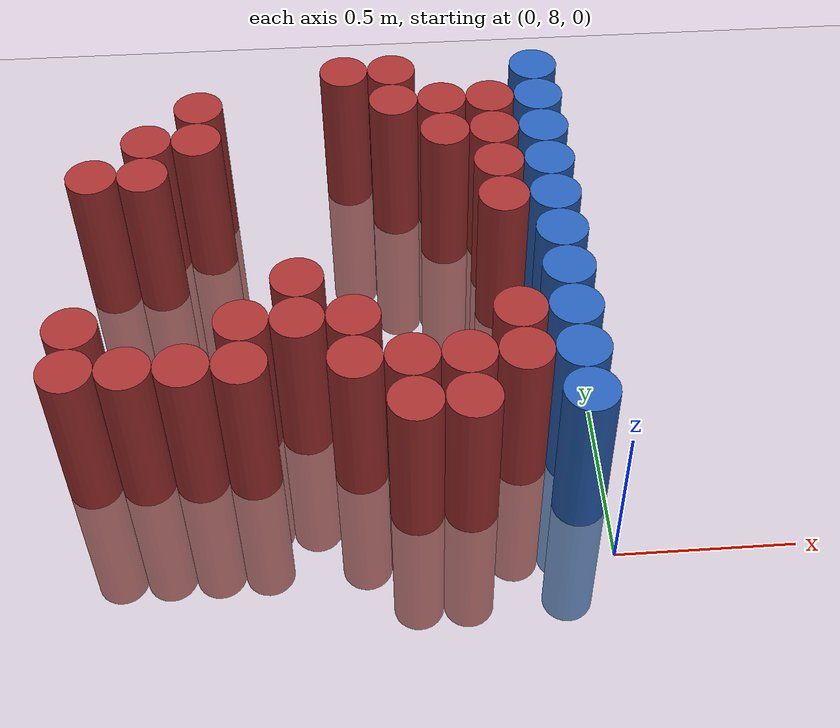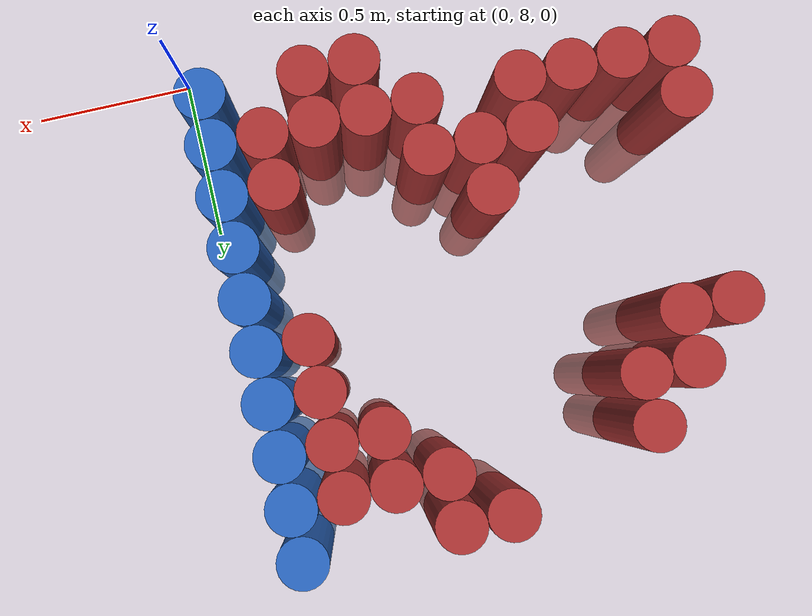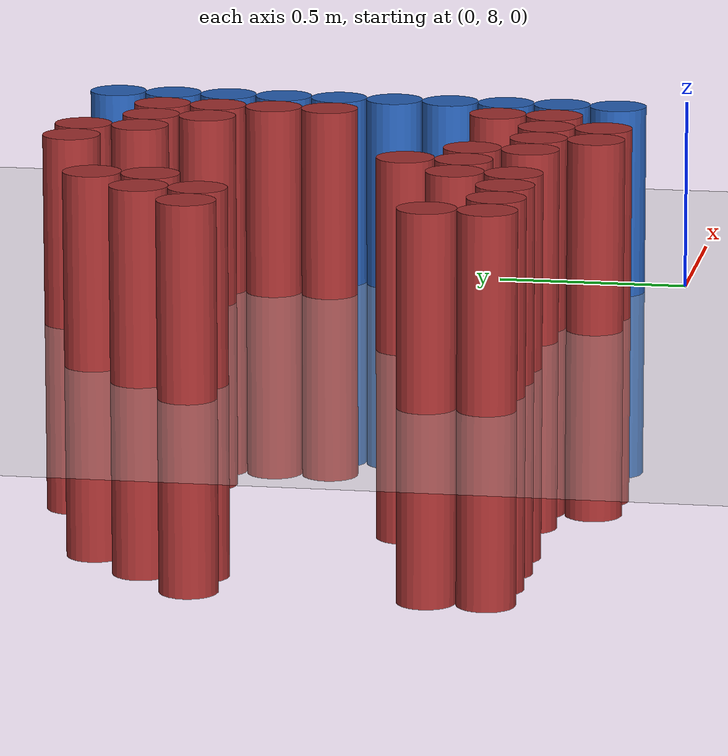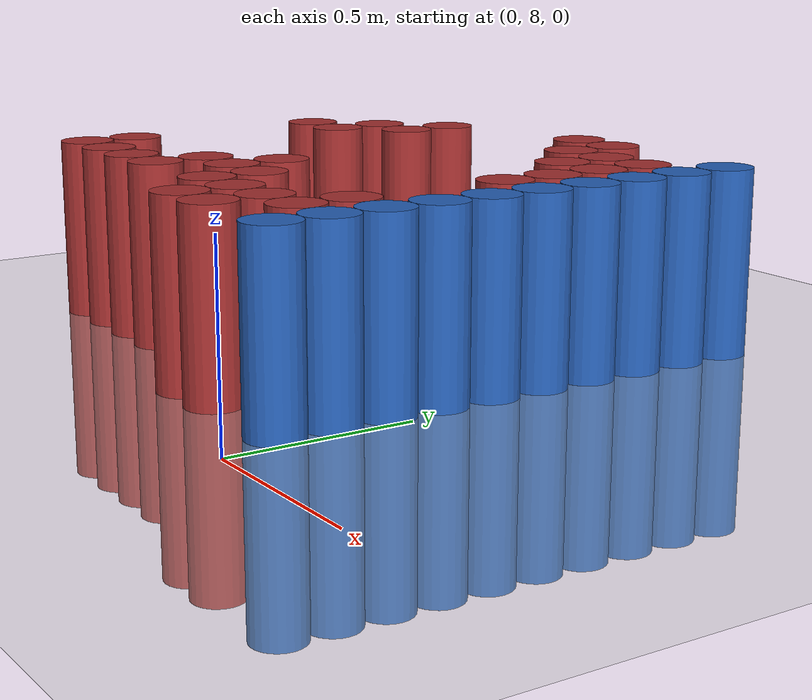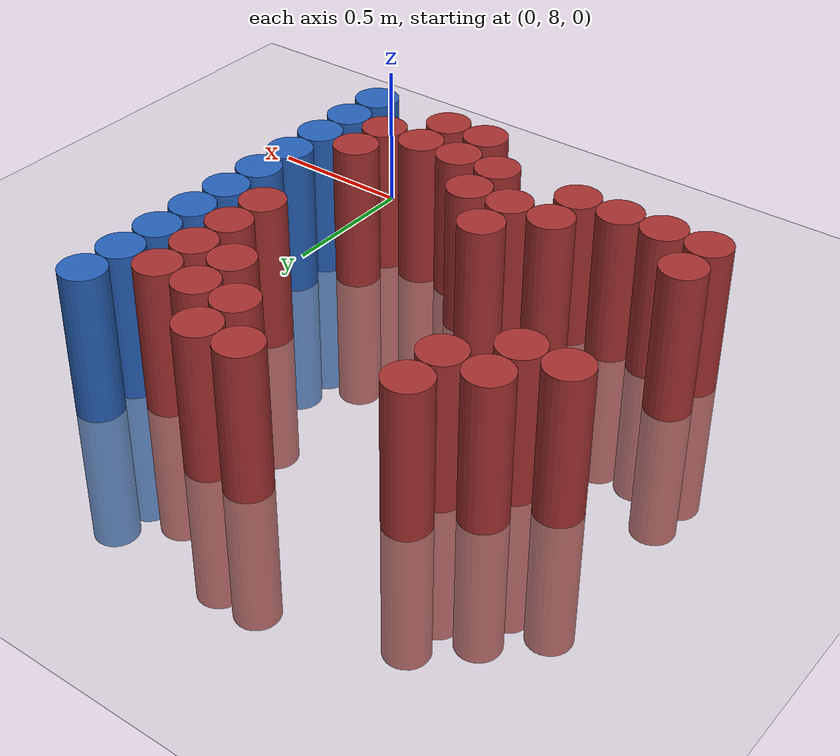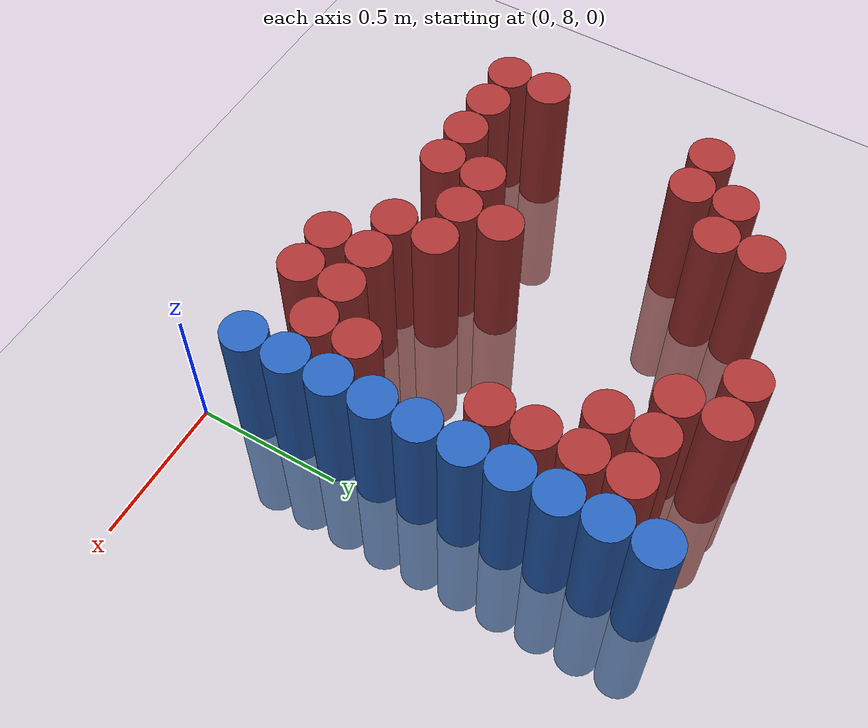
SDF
<sdf version="1.6">
 <world name="default">
  <model name="ground_plane">
   <static>1</static>
   <link name="link">
    <collision name="collision">
     <geometry><plane><normal>0 0 1</normal><size>100 100</size></plane></geometry>
     <surface><friction><ode><mu>100</mu><mu2>50</mu2></ode></friction></surface>
    </collision>
    <visual name="visual">
     <cast_shadows>0</cast_shadows>
     <geometry><plane><normal>0 0 1</normal><size>100 100</size></plane></geometry>
     <material>
      <script><uri>file://media/materials/scripts/gazebo.material</uri><name>Gazebo/Grey</name></script>
     </material>
    </visual>
   </link>
  </model>
  <model name="unit_cylinder_217">
   <static>1</static>
   <pose>-1.425000 8.325000 0.000000 0.000000 0.000000 0.000000</pose>
   <link name="link">
    <inertial>
     <mass>1</mass>
     <inertia><ixx>0.145833</ixx><ixy>0</ixy><ixz>0</ixz><iyy>0.145833</iyy><iyz>0</iyz><izz>0.125</izz></inertia>
    </inertial>
    <collision name="collision">
     <geometry><cylinder><radius>0.075000</radius><length>1</length></cylinder></geometry>
    </collision>
    <visual name="visual">
     <geometry><cylinder><radius>0.075000</radius><length>1</length></cylinder></geometry>
     <material>
      <ambient>0.648000 0.192000 0.192000 1</ambient>
      <diffuse>0.648000 0.192000 0.192000 1</diffuse>
     </material>
     <material>
      <script><name>Gazebo/Grey</name><uri>file://media/materials/scripts/gazebo.material</uri></script>
     </material>
    </visual>
    <sensor name="sensor_contact" type="contact"><contact><collision>collision</collision></contact></sensor>
   </link>
   <plugin filename="gz-sim-touchplugin-system" name="gz::sim::systems::TouchPlugin">
    <target>robot</target>
    <namespace>robot</namespace>
    <time>0.001</time>
    <enabled>true</enabled>
   </plugin>
  </model>
  <model name="unit_cylinder_218">
   <static>1</static>
   <pose>-1.425000 8.475000 0.000000 0.000000 0.000000 0.000000</pose>
   <link name="link">
    <inertial>
     <mass>1</mass>
     <inertia><ixx>0.145833</ixx><ixy>0</ixy><ixz>0</ixz><iyy>0.145833</iyy><iyz>0</iyz><izz>0.125</izz></inertia>
    </inertial>
    <collision name="collision">
     <geometry><cylinder><radius>0.075000</radius><length>1</length></cylinder></geometry>
    </collision>
    <visual name="visual">
     <geometry><cylinder><radius>0.075000</radius><length>1</length></cylinder></geometry>
     <material>
      <ambient>0.648000 0.192000 0.192000 1</ambient>
      <diffuse>0.648000 0.192000 0.192000 1</diffuse>
     </material>
     <material>
      <script><name>Gazebo/Grey</name><uri>file://media/materials/scripts/gazebo.material</uri></script>
     </material>
    </visual>
    <sensor name="sensor_contact" type="contact"><contact><collision>collision</collision></contact></sensor>
   </link>
   <plugin filename="gz-sim-touchplugin-system" name="gz::sim::systems::TouchPlugin">
    <target>robot</target>
    <namespace>robot</namespace>
    <time>0.001</time>
    <enabled>true</enabled>
   </plugin>
  </model>
  <model name="unit_cylinder_219">
   <static>1</static>
   <pose>-1.425000 9.075000 0.000000 0.000000 0.000000 0.000000</pose>
   <link name="link">
    <inertial>
     <mass>1</mass>
     <inertia><ixx>0.145833</ixx><ixy>0</ixy><ixz>0</ixz><iyy>0.145833</iyy><iyz>0</iyz><izz>0.125</izz></inertia>
    </inertial>
    <collision name="collision">
     <geometry><cylinder><radius>0.075000</radius><length>1</length></cylinder></geometry>
    </collision>
    <visual name="visual">
     <geometry><cylinder><radius>0.075000</radius><length>1</length></cylinder></geometry>
     <material>
      <ambient>0.648000 0.192000 0.192000 1</ambient>
      <diffuse>0.648000 0.192000 0.192000 1</diffuse>
     </material>
     <material>
      <script><name>Gazebo/Grey</name><uri>file://media/materials/scripts/gazebo.material</uri></script>
     </material>
    </visual>
    <sensor name="sensor_contact" type="contact"><contact><collision>collision</collision></contact></sensor>
   </link>
   <plugin filename="gz-sim-touchplugin-system" name="gz::sim::systems::TouchPlugin">
    <target>robot</target>
    <namespace>robot</namespace>
    <time>0.001</time>
    <enabled>true</enabled>
   </plugin>
  </model>
  <model name="unit_cylinder_223">
   <static>1</static>
   <pose>-1.275000 8.325000 0.000000 0.000000 0.000000 0.000000</pose>
   <link name="link">
    <inertial>
     <mass>1</mass>
     <inertia><ixx>0.145833</ixx><ixy>0</ixy><ixz>0</ixz><iyy>0.145833</iyy><iyz>0</iyz><izz>0.125</izz></inertia>
    </inertial>
    <collision name="collision">
     <geometry><cylinder><radius>0.075000</radius><length>1</length></cylinder></geometry>
    </collision>
    <visual name="visual">
     <geometry><cylinder><radius>0.075000</radius><length>1</length></cylinder></geometry>
     <material>
      <ambient>0.648000 0.192000 0.192000 1</ambient>
      <diffuse>0.648000 0.192000 0.192000 1</diffuse>
     </material>
     <material>
      <script><name>Gazebo/Grey</name><uri>file://media/materials/scripts/gazebo.material</uri></script>
     </material>
    </visual>
    <sensor name="sensor_contact" type="contact"><contact><collision>collision</collision></contact></sensor>
   </link>
   <plugin filename="gz-sim-touchplugin-system" name="gz::sim::systems::TouchPlugin">
    <target>robot</target>
    <namespace>robot</namespace>
    <time>0.001</time>
    <enabled>true</enabled>
   </plugin>
  </model>
  <model name="unit_cylinder_224">
   <static>1</static>
   <pose>-1.275000 9.075000 0.000000 0.000000 0.000000 0.000000</pose>
   <link name="link">
    <inertial>
     <mass>1</mass>
     <inertia><ixx>0.145833</ixx><ixy>0</ixy><ixz>0</ixz><iyy>0.145833</iyy><iyz>0</iyz><izz>0.125</izz></inertia>
    </inertial>
    <collision name="collision">
     <geometry><cylinder><radius>0.075000</radius><length>1</length></cylinder></geometry>
    </collision>
    <visual name="visual">
     <geometry><cylinder><radius>0.075000</radius><length>1</length></cylinder></geometry>
     <material>
      <ambient>0.648000 0.192000 0.192000 1</ambient>
      <diffuse>0.648000 0.192000 0.192000 1</diffuse>
     </material>
     <material>
      <script><name>Gazebo/Grey</name><uri>file://media/materials/scripts/gazebo.material</uri></script>
     </material>
    </visual>
    <sensor name="sensor_contact" type="contact"><contact><collision>collision</collision></contact></sensor>
   </link>
   <plugin filename="gz-sim-touchplugin-system" name="gz::sim::systems::TouchPlugin">
    <target>robot</target>
    <namespace>robot</namespace>
    <time>0.001</time>
    <enabled>true</enabled>
   </plugin>
  </model>
  <model name="unit_cylinder_225">
   <static>1</static>
   <pose>-1.275000 9.225000 0.000000 0.000000 0.000000 0.000000</pose>
   <link name="link">
    <inertial>
     <mass>1</mass>
     <inertia><ixx>0.145833</ixx><ixy>0</ixy><ixz>0</ixz><iyy>0.145833</iyy><iyz>0</iyz><izz>0.125</izz></inertia>
    </inertial>
    <collision name="collision">
     <geometry><cylinder><radius>0.075000</radius><length>1</length></cylinder></geometry>
    </collision>
    <visual name="visual">
     <geometry><cylinder><radius>0.075000</radius><length>1</length></cylinder></geometry>
     <material>
      <ambient>0.648000 0.192000 0.192000 1</ambient>
      <diffuse>0.648000 0.192000 0.192000 1</diffuse>
     </material>
     <material>
      <script><name>Gazebo/Grey</name><uri>file://media/materials/scripts/gazebo.material</uri></script>
     </material>
    </visual>
    <sensor name="sensor_contact" type="contact"><contact><collision>collision</collision></contact></sensor>
   </link>
   <plugin filename="gz-sim-touchplugin-system" name="gz::sim::systems::TouchPlugin">
    <target>robot</target>
    <namespace>robot</namespace>
    <time>0.001</time>
    <enabled>true</enabled>
   </plugin>
  </model>
  <model name="unit_cylinder_231">
   <static>1</static>
   <pose>-1.125000 8.325000 0.000000 0.000000 0.000000 0.000000</pose>
   <link name="link">
    <inertial>
     <mass>1</mass>
     <inertia><ixx>0.145833</ixx><ixy>0</ixy><ixz>0</ixz><iyy>0.145833</iyy><iyz>0</iyz><izz>0.125</izz></inertia>
    </inertial>
    <collision name="collision">
     <geometry><cylinder><radius>0.075000</radius><length>1</length></cylinder></geometry>
    </collision>
    <visual name="visual">
     <geometry><cylinder><radius>0.075000</radius><length>1</length></cylinder></geometry>
     <material>
      <ambient>0.648000 0.192000 0.192000 1</ambient>
      <diffuse>0.648000 0.192000 0.192000 1</diffuse>
     </material>
     <material>
      <script><name>Gazebo/Grey</name><uri>file://media/materials/scripts/gazebo.material</uri></script>
     </material>
    </visual>
    <sensor name="sensor_contact" type="contact"><contact><collision>collision</collision></contact></sensor>
   </link>
   <plugin filename="gz-sim-touchplugin-system" name="gz::sim::systems::TouchPlugin">
    <target>robot</target>
    <namespace>robot</namespace>
    <time>0.001</time>
    <enabled>true</enabled>
   </plugin>
  </model>
  <model name="unit_cylinder_232">
   <static>1</static>
   <pose>-1.125000 9.225000 0.000000 0.000000 0.000000 0.000000</pose>
   <link name="link">
    <inertial>
     <mass>1</mass>
     <inertia><ixx>0.145833</ixx><ixy>0</ixy><ixz>0</ixz><iyy>0.145833</iyy><iyz>0</iyz><izz>0.125</izz></inertia>
    </inertial>
    <collision name="collision">
     <geometry><cylinder><radius>0.075000</radius><length>1</length></cylinder></geometry>
    </collision>
    <visual name="visual">
     <geometry><cylinder><radius>0.075000</radius><length>1</length></cylinder></geometry>
     <material>
      <ambient>0.648000 0.192000 0.192000 1</ambient>
      <diffuse>0.648000 0.192000 0.192000 1</diffuse>
     </material>
     <material>
      <script><name>Gazebo/Grey</name><uri>file://media/materials/scripts/gazebo.material</uri></script>
     </material>
    </visual>
    <sensor name="sensor_contact" type="contact"><contact><collision>collision</collision></contact></sensor>
   </link>
   <plugin filename="gz-sim-touchplugin-system" name="gz::sim::systems::TouchPlugin">
    <target>robot</target>
    <namespace>robot</namespace>
    <time>0.001</time>
    <enabled>true</enabled>
   </plugin>
  </model>
  <model name="unit_cylinder_233">
   <static>1</static>
   <pose>-1.125000 9.375000 0.000000 0.000000 0.000000 0.000000</pose>
   <link name="link">
    <inertial>
     <mass>1</mass>
     <inertia><ixx>0.145833</ixx><ixy>0</ixy><ixz>0</ixz><iyy>0.145833</iyy><iyz>0</iyz><izz>0.125</izz></inertia>
    </inertial>
    <collision name="collision">
     <geometry><cylinder><radius>0.075000</radius><length>1</length></cylinder></geometry>
    </collision>
    <visual name="visual">
     <geometry><cylinder><radius>0.075000</radius><length>1</length></cylinder></geometry>
     <material>
      <ambient>0.648000 0.192000 0.192000 1</ambient>
      <diffuse>0.648000 0.192000 0.192000 1</diffuse>
     </material>
     <material>
      <script><name>Gazebo/Grey</name><uri>file://media/materials/scripts/gazebo.material</uri></script>
     </material>
    </visual>
    <sensor name="sensor_contact" type="contact"><contact><collision>collision</collision></contact></sensor>
   </link>
   <plugin filename="gz-sim-touchplugin-system" name="gz::sim::systems::TouchPlugin">
    <target>robot</target>
    <namespace>robot</namespace>
    <time>0.001</time>
    <enabled>true</enabled>
   </plugin>
  </model>
  <model name="unit_cylinder_240">
   <static>1</static>
   <pose>-0.975000 8.325000 0.000000 0.000000 0.000000 0.000000</pose>
   <link name="link">
    <inertial>
     <mass>1</mass>
     <inertia><ixx>0.145833</ixx><ixy>0</ixy><ixz>0</ixz><iyy>0.145833</iyy><iyz>0</iyz><izz>0.125</izz></inertia>
    </inertial>
    <collision name="collision">
     <geometry><cylinder><radius>0.075000</radius><length>1</length></cylinder></geometry>
    </collision>
    <visual name="visual">
     <geometry><cylinder><radius>0.075000</radius><length>1</length></cylinder></geometry>
     <material>
      <ambient>0.648000 0.192000 0.192000 1</ambient>
      <diffuse>0.648000 0.192000 0.192000 1</diffuse>
     </material>
     <material>
      <script><name>Gazebo/Grey</name><uri>file://media/materials/scripts/gazebo.material</uri></script>
     </material>
    </visual>
    <sensor name="sensor_contact" type="contact"><contact><collision>collision</collision></contact></sensor>
   </link>
   <plugin filename="gz-sim-touchplugin-system" name="gz::sim::systems::TouchPlugin">
    <target>robot</target>
    <namespace>robot</namespace>
    <time>0.001</time>
    <enabled>true</enabled>
   </plugin>
  </model>
  <model name="unit_cylinder_241">
   <static>1</static>
   <pose>-0.975000 8.475000 0.000000 0.000000 0.000000 0.000000</pose>
   <link name="link">
    <inertial>
     <mass>1</mass>
     <inertia><ixx>0.145833</ixx><ixy>0</ixy><ixz>0</ixz><iyy>0.145833</iyy><iyz>0</iyz><izz>0.125</izz></inertia>
    </inertial>
    <collision name="collision">
     <geometry><cylinder><radius>0.075000</radius><length>1</length></cylinder></geometry>
    </collision>
    <visual name="visual">
     <geometry><cylinder><radius>0.075000</radius><length>1</length></cylinder></geometry>
     <material>
      <ambient>0.648000 0.192000 0.192000 1</ambient>
      <diffuse>0.648000 0.192000 0.192000 1</diffuse>
     </material>
     <material>
      <script><name>Gazebo/Grey</name><uri>file://media/materials/scripts/gazebo.material</uri></script>
     </material>
    </visual>
    <sensor name="sensor_contact" type="contact"><contact><collision>collision</collision></contact></sensor>
   </link>
   <plugin filename="gz-sim-touchplugin-system" name="gz::sim::systems::TouchPlugin">
    <target>robot</target>
    <namespace>robot</namespace>
    <time>0.001</time>
    <enabled>true</enabled>
   </plugin>
  </model>
  <model name="unit_cylinder_245">
   <static>1</static>
   <pose>-0.825000 8.475000 0.000000 0.000000 0.000000 0.000000</pose>
   <link name="link">
    <inertial>
     <mass>1</mass>
     <inertia><ixx>0.145833</ixx><ixy>0</ixy><ixz>0</ixz><iyy>0.145833</iyy><iyz>0</iyz><izz>0.125</izz></inertia>
    </inertial>
    <collision name="collision">
     <geometry><cylinder><radius>0.075000</radius><length>1</length></cylinder></geometry>
    </collision>
    <visual name="visual">
     <geometry><cylinder><radius>0.075000</radius><length>1</length></cylinder></geometry>
     <material>
      <ambient>0.648000 0.192000 0.192000 1</ambient>
      <diffuse>0.648000 0.192000 0.192000 1</diffuse>
     </material>
     <material>
      <script><name>Gazebo/Grey</name><uri>file://media/materials/scripts/gazebo.material</uri></script>
     </material>
    </visual>
    <sensor name="sensor_contact" type="contact"><contact><collision>collision</collision></contact></sensor>
   </link>
   <plugin filename="gz-sim-touchplugin-system" name="gz::sim::systems::TouchPlugin">
    <target>robot</target>
    <namespace>robot</namespace>
    <time>0.001</time>
    <enabled>true</enabled>
   </plugin>
  </model>
  <model name="unit_cylinder_246">
   <static>1</static>
   <pose>-0.825000 8.625000 0.000000 0.000000 0.000000 0.000000</pose>
   <link name="link">
    <inertial>
     <mass>1</mass>
     <inertia><ixx>0.145833</ixx><ixy>0</ixy><ixz>0</ixz><iyy>0.145833</iyy><iyz>0</iyz><izz>0.125</izz></inertia>
    </inertial>
    <collision name="collision">
     <geometry><cylinder><radius>0.075000</radius><length>1</length></cylinder></geometry>
    </collision>
    <visual name="visual">
     <geometry><cylinder><radius>0.075000</radius><length>1</length></cylinder></geometry>
     <material>
      <ambient>0.648000 0.192000 0.192000 1</ambient>
      <diffuse>0.648000 0.192000 0.192000 1</diffuse>
     </material>
     <material>
      <script><name>Gazebo/Grey</name><uri>file://media/materials/scripts/gazebo.material</uri></script>
     </material>
    </visual>
    <sensor name="sensor_contact" type="contact"><contact><collision>collision</collision></contact></sensor>
   </link>
   <plugin filename="gz-sim-touchplugin-system" name="gz::sim::systems::TouchPlugin">
    <target>robot</target>
    <namespace>robot</namespace>
    <time>0.001</time>
    <enabled>true</enabled>
   </plugin>
  </model>
  <model name="unit_cylinder_250">
   <static>1</static>
   <pose>-0.675000 8.325000 0.000000 0.000000 0.000000 0.000000</pose>
   <link name="link">
    <inertial>
     <mass>1</mass>
     <inertia><ixx>0.145833</ixx><ixy>0</ixy><ixz>0</ixz><iyy>0.145833</iyy><iyz>0</iyz><izz>0.125</izz></inertia>
    </inertial>
    <collision name="collision">
     <geometry><cylinder><radius>0.075000</radius><length>1</length></cylinder></geometry>
    </collision>
    <visual name="visual">
     <geometry><cylinder><radius>0.075000</radius><length>1</length></cylinder></geometry>
     <material>
      <ambient>0.648000 0.192000 0.192000 1</ambient>
      <diffuse>0.648000 0.192000 0.192000 1</diffuse>
     </material>
     <material>
      <script><name>Gazebo/Grey</name><uri>file://media/materials/scripts/gazebo.material</uri></script>
     </material>
    </visual>
    <sensor name="sensor_contact" type="contact"><contact><collision>collision</collision></contact></sensor>
   </link>
   <plugin filename="gz-sim-touchplugin-system" name="gz::sim::systems::TouchPlugin">
    <target>robot</target>
    <namespace>robot</namespace>
    <time>0.001</time>
    <enabled>true</enabled>
   </plugin>
  </model>
  <model name="unit_cylinder_251">
   <static>1</static>
   <pose>-0.675000 8.475000 0.000000 0.000000 0.000000 0.000000</pose>
   <link name="link">
    <inertial>
     <mass>1</mass>
     <inertia><ixx>0.145833</ixx><ixy>0</ixy><ixz>0</ixz><iyy>0.145833</iyy><iyz>0</iyz><izz>0.125</izz></inertia>
    </inertial>
    <collision name="collision">
     <geometry><cylinder><radius>0.075000</radius><length>1</length></cylinder></geometry>
    </collision>
    <visual name="visual">
     <geometry><cylinder><radius>0.075000</radius><length>1</length></cylinder></geometry>
     <material>
      <ambient>0.648000 0.192000 0.192000 1</ambient>
      <diffuse>0.648000 0.192000 0.192000 1</diffuse>
     </material>
     <material>
      <script><name>Gazebo/Grey</name><uri>file://media/materials/scripts/gazebo.material</uri></script>
     </material>
    </visual>
    <sensor name="sensor_contact" type="contact"><contact><collision>collision</collision></contact></sensor>
   </link>
   <plugin filename="gz-sim-touchplugin-system" name="gz::sim::systems::TouchPlugin">
    <target>robot</target>
    <namespace>robot</namespace>
    <time>0.001</time>
    <enabled>true</enabled>
   </plugin>
  </model>
  <model name="unit_cylinder_252">
   <static>1</static>
   <pose>-0.675000 9.525000 0.000000 0.000000 0.000000 0.000000</pose>
   <link name="link">
    <inertial>
     <mass>1</mass>
     <inertia><ixx>0.145833</ixx><ixy>0</ixy><ixz>0</ixz><iyy>0.145833</iyy><iyz>0</iyz><izz>0.125</izz></inertia>
    </inertial>
    <collision name="collision">
     <geometry><cylinder><radius>0.075000</radius><length>1</length></cylinder></geometry>
    </collision>
    <visual name="visual">
     <geometry><cylinder><radius>0.075000</radius><length>1</length></cylinder></geometry>
     <material>
      <ambient>0.648000 0.192000 0.192000 1</ambient>
      <diffuse>0.648000 0.192000 0.192000 1</diffuse>
     </material>
     <material>
      <script><name>Gazebo/Grey</name><uri>file://media/materials/scripts/gazebo.material</uri></script>
     </material>
    </visual>
    <sensor name="sensor_contact" type="contact"><contact><collision>collision</collision></contact></sensor>
   </link>
   <plugin filename="gz-sim-touchplugin-system" name="gz::sim::systems::TouchPlugin">
    <target>robot</target>
    <namespace>robot</namespace>
    <time>0.001</time>
    <enabled>true</enabled>
   </plugin>
  </model>
  <model name="unit_cylinder_257">
   <static>1</static>
   <pose>-0.525000 8.175000 0.000000 0.000000 0.000000 0.000000</pose>
   <link name="link">
    <inertial>
     <mass>1</mass>
     <inertia><ixx>0.145833</ixx><ixy>0</ixy><ixz>0</ixz><iyy>0.145833</iyy><iyz>0</iyz><izz>0.125</izz></inertia>
    </inertial>
    <collision name="collision">
     <geometry><cylinder><radius>0.075000</radius><length>1</length></cylinder></geometry>
    </collision>
    <visual name="visual">
     <geometry><cylinder><radius>0.075000</radius><length>1</length></cylinder></geometry>
     <material>
      <ambient>0.648000 0.192000 0.192000 1</ambient>
      <diffuse>0.648000 0.192000 0.192000 1</diffuse>
     </material>
     <material>
      <script><name>Gazebo/Grey</name><uri>file://media/materials/scripts/gazebo.material</uri></script>
     </material>
    </visual>
    <sensor name="sensor_contact" type="contact"><contact><collision>collision</collision></contact></sensor>
   </link>
   <plugin filename="gz-sim-touchplugin-system" name="gz::sim::systems::TouchPlugin">
    <target>robot</target>
    <namespace>robot</namespace>
    <time>0.001</time>
    <enabled>true</enabled>
   </plugin>
  </model>
  <model name="unit_cylinder_258">
   <static>1</static>
   <pose>-0.525000 8.325000 0.000000 0.000000 0.000000 0.000000</pose>
   <link name="link">
    <inertial>
     <mass>1</mass>
     <inertia><ixx>0.145833</ixx><ixy>0</ixy><ixz>0</ixz><iyy>0.145833</iyy><iyz>0</iyz><izz>0.125</izz></inertia>
    </inertial>
    <collision name="collision">
     <geometry><cylinder><radius>0.075000</radius><length>1</length></cylinder></geometry>
    </collision>
    <visual name="visual">
     <geometry><cylinder><radius>0.075000</radius><length>1</length></cylinder></geometry>
     <material>
      <ambient>0.648000 0.192000 0.192000 1</ambient>
      <diffuse>0.648000 0.192000 0.192000 1</diffuse>
     </material>
     <material>
      <script><name>Gazebo/Grey</name><uri>file://media/materials/scripts/gazebo.material</uri></script>
     </material>
    </visual>
    <sensor name="sensor_contact" type="contact"><contact><collision>collision</collision></contact></sensor>
   </link>
   <plugin filename="gz-sim-touchplugin-system" name="gz::sim::systems::TouchPlugin">
    <target>robot</target>
    <namespace>robot</namespace>
    <time>0.001</time>
    <enabled>true</enabled>
   </plugin>
  </model>
  <model name="unit_cylinder_259">
   <static>1</static>
   <pose>-0.525000 9.375000 0.000000 0.000000 0.000000 0.000000</pose>
   <link name="link">
    <inertial>
     <mass>1</mass>
     <inertia><ixx>0.145833</ixx><ixy>0</ixy><ixz>0</ixz><iyy>0.145833</iyy><iyz>0</iyz><izz>0.125</izz></inertia>
    </inertial>
    <collision name="collision">
     <geometry><cylinder><radius>0.075000</radius><length>1</length></cylinder></geometry>
    </collision>
    <visual name="visual">
     <geometry><cylinder><radius>0.075000</radius><length>1</length></cylinder></geometry>
     <material>
      <ambient>0.648000 0.192000 0.192000 1</ambient>
      <diffuse>0.648000 0.192000 0.192000 1</diffuse>
     </material>
     <material>
      <script><name>Gazebo/Grey</name><uri>file://media/materials/scripts/gazebo.material</uri></script>
     </material>
    </visual>
    <sensor name="sensor_contact" type="contact"><contact><collision>collision</collision></contact></sensor>
   </link>
   <plugin filename="gz-sim-touchplugin-system" name="gz::sim::systems::TouchPlugin">
    <target>robot</target>
    <namespace>robot</namespace>
    <time>0.001</time>
    <enabled>true</enabled>
   </plugin>
  </model>
  <model name="unit_cylinder_260">
   <static>1</static>
   <pose>-0.525000 9.525000 0.000000 0.000000 0.000000 0.000000</pose>
   <link name="link">
    <inertial>
     <mass>1</mass>
     <inertia><ixx>0.145833</ixx><ixy>0</ixy><ixz>0</ixz><iyy>0.145833</iyy><iyz>0</iyz><izz>0.125</izz></inertia>
    </inertial>
    <collision name="collision">
     <geometry><cylinder><radius>0.075000</radius><length>1</length></cylinder></geometry>
    </collision>
    <visual name="visual">
     <geometry><cylinder><radius>0.075000</radius><length>1</length></cylinder></geometry>
     <material>
      <ambient>0.648000 0.192000 0.192000 1</ambient>
      <diffuse>0.648000 0.192000 0.192000 1</diffuse>
     </material>
     <material>
      <script><name>Gazebo/Grey</name><uri>file://media/materials/scripts/gazebo.material</uri></script>
     </material>
    </visual>
    <sensor name="sensor_contact" type="contact"><contact><collision>collision</collision></contact></sensor>
   </link>
   <plugin filename="gz-sim-touchplugin-system" name="gz::sim::systems::TouchPlugin">
    <target>robot</target>
    <namespace>robot</namespace>
    <time>0.001</time>
    <enabled>true</enabled>
   </plugin>
  </model>
  <model name="unit_cylinder_268">
   <static>1</static>
   <pose>-0.375000 8.175000 0.000000 0.000000 0.000000 0.000000</pose>
   <link name="link">
    <inertial>
     <mass>1</mass>
     <inertia><ixx>0.145833</ixx><ixy>0</ixy><ixz>0</ixz><iyy>0.145833</iyy><iyz>0</iyz><izz>0.125</izz></inertia>
    </inertial>
    <collision name="collision">
     <geometry><cylinder><radius>0.075000</radius><length>1</length></cylinder></geometry>
    </collision>
    <visual name="visual">
     <geometry><cylinder><radius>0.075000</radius><length>1</length></cylinder></geometry>
     <material>
      <ambient>0.648000 0.192000 0.192000 1</ambient>
      <diffuse>0.648000 0.192000 0.192000 1</diffuse>
     </material>
     <material>
      <script><name>Gazebo/Grey</name><uri>file://media/materials/scripts/gazebo.material</uri></script>
     </material>
    </visual>
    <sensor name="sensor_contact" type="contact"><contact><collision>collision</collision></contact></sensor>
   </link>
   <plugin filename="gz-sim-touchplugin-system" name="gz::sim::systems::TouchPlugin">
    <target>robot</target>
    <namespace>robot</namespace>
    <time>0.001</time>
    <enabled>true</enabled>
   </plugin>
  </model>
  <model name="unit_cylinder_269">
   <static>1</static>
   <pose>-0.375000 8.325000 0.000000 0.000000 0.000000 0.000000</pose>
   <link name="link">
    <inertial>
     <mass>1</mass>
     <inertia><ixx>0.145833</ixx><ixy>0</ixy><ixz>0</ixz><iyy>0.145833</iyy><iyz>0</iyz><izz>0.125</izz></inertia>
    </inertial>
    <collision name="collision">
     <geometry><cylinder><radius>0.075000</radius><length>1</length></cylinder></geometry>
    </collision>
    <visual name="visual">
     <geometry><cylinder><radius>0.075000</radius><length>1</length></cylinder></geometry>
     <material>
      <ambient>0.648000 0.192000 0.192000 1</ambient>
      <diffuse>0.648000 0.192000 0.192000 1</diffuse>
     </material>
     <material>
      <script><name>Gazebo/Grey</name><uri>file://media/materials/scripts/gazebo.material</uri></script>
     </material>
    </visual>
    <sensor name="sensor_contact" type="contact"><contact><collision>collision</collision></contact></sensor>
   </link>
   <plugin filename="gz-sim-touchplugin-system" name="gz::sim::systems::TouchPlugin">
    <target>robot</target>
    <namespace>robot</namespace>
    <time>0.001</time>
    <enabled>true</enabled>
   </plugin>
  </model>
  <model name="unit_cylinder_270">
   <static>1</static>
   <pose>-0.375000 9.225000 0.000000 0.000000 0.000000 0.000000</pose>
   <link name="link">
    <inertial>
     <mass>1</mass>
     <inertia><ixx>0.145833</ixx><ixy>0</ixy><ixz>0</ixz><iyy>0.145833</iyy><iyz>0</iyz><izz>0.125</izz></inertia>
    </inertial>
    <collision name="collision">
     <geometry><cylinder><radius>0.075000</radius><length>1</length></cylinder></geometry>
    </collision>
    <visual name="visual">
     <geometry><cylinder><radius>0.075000</radius><length>1</length></cylinder></geometry>
     <material>
      <ambient>0.648000 0.192000 0.192000 1</ambient>
      <diffuse>0.648000 0.192000 0.192000 1</diffuse>
     </material>
     <material>
      <script><name>Gazebo/Grey</name><uri>file://media/materials/scripts/gazebo.material</uri></script>
     </material>
    </visual>
    <sensor name="sensor_contact" type="contact"><contact><collision>collision</collision></contact></sensor>
   </link>
   <plugin filename="gz-sim-touchplugin-system" name="gz::sim::systems::TouchPlugin">
    <target>robot</target>
    <namespace>robot</namespace>
    <time>0.001</time>
    <enabled>true</enabled>
   </plugin>
  </model>
  <model name="unit_cylinder_271">
   <static>1</static>
   <pose>-0.375000 9.375000 0.000000 0.000000 0.000000 0.000000</pose>
   <link name="link">
    <inertial>
     <mass>1</mass>
     <inertia><ixx>0.145833</ixx><ixy>0</ixy><ixz>0</ixz><iyy>0.145833</iyy><iyz>0</iyz><izz>0.125</izz></inertia>
    </inertial>
    <collision name="collision">
     <geometry><cylinder><radius>0.075000</radius><length>1</length></cylinder></geometry>
    </collision>
    <visual name="visual">
     <geometry><cylinder><radius>0.075000</radius><length>1</length></cylinder></geometry>
     <material>
      <ambient>0.648000 0.192000 0.192000 1</ambient>
      <diffuse>0.648000 0.192000 0.192000 1</diffuse>
     </material>
     <material>
      <script><name>Gazebo/Grey</name><uri>file://media/materials/scripts/gazebo.material</uri></script>
     </material>
    </visual>
    <sensor name="sensor_contact" type="contact"><contact><collision>collision</collision></contact></sensor>
   </link>
   <plugin filename="gz-sim-touchplugin-system" name="gz::sim::systems::TouchPlugin">
    <target>robot</target>
    <namespace>robot</namespace>
    <time>0.001</time>
    <enabled>true</enabled>
   </plugin>
  </model>
  <model name="unit_cylinder_282">
   <static>1</static>
   <pose>-0.225000 8.325000 0.000000 0.000000 0.000000 0.000000</pose>
   <link name="link">
    <inertial>
     <mass>1</mass>
     <inertia><ixx>0.145833</ixx><ixy>0</ixy><ixz>0</ixz><iyy>0.145833</iyy><iyz>0</iyz><izz>0.125</izz></inertia>
    </inertial>
    <collision name="collision">
     <geometry><cylinder><radius>0.075000</radius><length>1</length></cylinder></geometry>
    </collision>
    <visual name="visual">
     <geometry><cylinder><radius>0.075000</radius><length>1</length></cylinder></geometry>
     <material>
      <ambient>0.648000 0.192000 0.192000 1</ambient>
      <diffuse>0.648000 0.192000 0.192000 1</diffuse>
     </material>
     <material>
      <script><name>Gazebo/Grey</name><uri>file://media/materials/scripts/gazebo.material</uri></script>
     </material>
    </visual>
    <sensor name="sensor_contact" type="contact"><contact><collision>collision</collision></contact></sensor>
   </link>
   <plugin filename="gz-sim-touchplugin-system" name="gz::sim::systems::TouchPlugin">
    <target>robot</target>
    <namespace>robot</namespace>
    <time>0.001</time>
    <enabled>true</enabled>
   </plugin>
  </model>
  <model name="unit_cylinder_283">
   <static>1</static>
   <pose>-0.225000 8.475000 0.000000 0.000000 0.000000 0.000000</pose>
   <link name="link">
    <inertial>
     <mass>1</mass>
     <inertia><ixx>0.145833</ixx><ixy>0</ixy><ixz>0</ixz><iyy>0.145833</iyy><iyz>0</iyz><izz>0.125</izz></inertia>
    </inertial>
    <collision name="collision">
     <geometry><cylinder><radius>0.075000</radius><length>1</length></cylinder></geometry>
    </collision>
    <visual name="visual">
     <geometry><cylinder><radius>0.075000</radius><length>1</length></cylinder></geometry>
     <material>
      <ambient>0.648000 0.192000 0.192000 1</ambient>
      <diffuse>0.648000 0.192000 0.192000 1</diffuse>
     </material>
     <material>
      <script><name>Gazebo/Grey</name><uri>file://media/materials/scripts/gazebo.material</uri></script>
     </material>
    </visual>
    <sensor name="sensor_contact" type="contact"><contact><collision>collision</collision></contact></sensor>
   </link>
   <plugin filename="gz-sim-touchplugin-system" name="gz::sim::systems::TouchPlugin">
    <target>robot</target>
    <namespace>robot</namespace>
    <time>0.001</time>
    <enabled>true</enabled>
   </plugin>
  </model>
  <model name="unit_cylinder_284">
   <static>1</static>
   <pose>-0.225000 8.925000 0.000000 0.000000 0.000000 0.000000</pose>
   <link name="link">
    <inertial>
     <mass>1</mass>
     <inertia><ixx>0.145833</ixx><ixy>0</ixy><ixz>0</ixz><iyy>0.145833</iyy><iyz>0</iyz><izz>0.125</izz></inertia>
    </inertial>
    <collision name="collision">
     <geometry><cylinder><radius>0.075000</radius><length>1</length></cylinder></geometry>
    </collision>
    <visual name="visual">
     <geometry><cylinder><radius>0.075000</radius><length>1</length></cylinder></geometry>
     <material>
      <ambient>0.648000 0.192000 0.192000 1</ambient>
      <diffuse>0.648000 0.192000 0.192000 1</diffuse>
     </material>
     <material>
      <script><name>Gazebo/Grey</name><uri>file://media/materials/scripts/gazebo.material</uri></script>
     </material>
    </visual>
    <sensor name="sensor_contact" type="contact"><contact><collision>collision</collision></contact></sensor>
   </link>
   <plugin filename="gz-sim-touchplugin-system" name="gz::sim::systems::TouchPlugin">
    <target>robot</target>
    <namespace>robot</namespace>
    <time>0.001</time>
    <enabled>true</enabled>
   </plugin>
  </model>
  <model name="unit_cylinder_285">
   <static>1</static>
   <pose>-0.225000 9.075000 0.000000 0.000000 0.000000 0.000000</pose>
   <link name="link">
    <inertial>
     <mass>1</mass>
     <inertia><ixx>0.145833</ixx><ixy>0</ixy><ixz>0</ixz><iyy>0.145833</iyy><iyz>0</iyz><izz>0.125</izz></inertia>
    </inertial>
    <collision name="collision">
     <geometry><cylinder><radius>0.075000</radius><length>1</length></cylinder></geometry>
    </collision>
    <visual name="visual">
     <geometry><cylinder><radius>0.075000</radius><length>1</length></cylinder></geometry>
     <material>
      <ambient>0.648000 0.192000 0.192000 1</ambient>
      <diffuse>0.648000 0.192000 0.192000 1</diffuse>
     </material>
     <material>
      <script><name>Gazebo/Grey</name><uri>file://media/materials/scripts/gazebo.material</uri></script>
     </material>
    </visual>
    <sensor name="sensor_contact" type="contact"><contact><collision>collision</collision></contact></sensor>
   </link>
   <plugin filename="gz-sim-touchplugin-system" name="gz::sim::systems::TouchPlugin">
    <target>robot</target>
    <namespace>robot</namespace>
    <time>0.001</time>
    <enabled>true</enabled>
   </plugin>
  </model>
  <model name="unit_cylinder_286">
   <static>1</static>
   <pose>-0.225000 9.225000 0.000000 0.000000 0.000000 0.000000</pose>
   <link name="link">
    <inertial>
     <mass>1</mass>
     <inertia><ixx>0.145833</ixx><ixy>0</ixy><ixz>0</ixz><iyy>0.145833</iyy><iyz>0</iyz><izz>0.125</izz></inertia>
    </inertial>
    <collision name="collision">
     <geometry><cylinder><radius>0.075000</radius><length>1</length></cylinder></geometry>
    </collision>
    <visual name="visual">
     <geometry><cylinder><radius>0.075000</radius><length>1</length></cylinder></geometry>
     <material>
      <ambient>0.648000 0.192000 0.192000 1</ambient>
      <diffuse>0.648000 0.192000 0.192000 1</diffuse>
     </material>
     <material>
      <script><name>Gazebo/Grey</name><uri>file://media/materials/scripts/gazebo.material</uri></script>
     </material>
    </visual>
    <sensor name="sensor_contact" type="contact"><contact><collision>collision</collision></contact></sensor>
   </link>
   <plugin filename="gz-sim-touchplugin-system" name="gz::sim::systems::TouchPlugin">
    <target>robot</target>
    <namespace>robot</namespace>
    <time>0.001</time>
    <enabled>true</enabled>
   </plugin>
  </model>
  <model name="unit_cylinder_287">
   <static>1</static>
   <pose>-0.225000 9.375000 0.000000 0.000000 0.000000 0.000000</pose>
   <link name="link">
    <inertial>
     <mass>1</mass>
     <inertia><ixx>0.145833</ixx><ixy>0</ixy><ixz>0</ixz><iyy>0.145833</iyy><iyz>0</iyz><izz>0.125</izz></inertia>
    </inertial>
    <collision name="collision">
     <geometry><cylinder><radius>0.075000</radius><length>1</length></cylinder></geometry>
    </collision>
    <visual name="visual">
     <geometry><cylinder><radius>0.075000</radius><length>1</length></cylinder></geometry>
     <material>
      <ambient>0.648000 0.192000 0.192000 1</ambient>
      <diffuse>0.648000 0.192000 0.192000 1</diffuse>
     </material>
     <material>
      <script><name>Gazebo/Grey</name><uri>file://media/materials/scripts/gazebo.material</uri></script>
     </material>
    </visual>
    <sensor name="sensor_contact" type="contact"><contact><collision>collision</collision></contact></sensor>
   </link>
   <plugin filename="gz-sim-touchplugin-system" name="gz::sim::systems::TouchPlugin">
    <target>robot</target>
    <namespace>robot</namespace>
    <time>0.001</time>
    <enabled>true</enabled>
   </plugin>
  </model>
  <model name="unit_cylinder_308">
   <static>1</static>
   <pose>-0.075000 8.175000 0.000000 0.000000 0.000000 0.000000</pose>
   <link name="link">
    <inertial>
     <mass>1</mass>
     <inertia><ixx>0.145833</ixx><ixy>0</ixy><ixz>0</ixz><iyy>0.145833</iyy><iyz>0</iyz><izz>0.125</izz></inertia>
    </inertial>
    <collision name="collision">
     <geometry><cylinder><radius>0.075000</radius><length>1</length></cylinder></geometry>
    </collision>
    <visual name="visual">
     <geometry><cylinder><radius>0.075000</radius><length>1</length></cylinder></geometry>
     <material>
      <ambient>0.152000 0.379000 0.720000 1</ambient>
      <diffuse>0.152000 0.379000 0.720000 1</diffuse>
     </material>
     <material>
      <script><name>Gazebo/Grey</name><uri>file://media/materials/scripts/gazebo.material</uri></script>
     </material>
    </visual>
    <sensor name="sensor_contact" type="contact"><contact><collision>collision</collision></contact></sensor>
   </link>
   <plugin filename="gz-sim-touchplugin-system" name="gz::sim::systems::TouchPlugin">
    <target>robot</target>
    <namespace>robot</namespace>
    <time>0.001</time>
    <enabled>true</enabled>
   </plugin>
  </model>
  <model name="unit_cylinder_309">
   <static>1</static>
   <pose>-0.075000 8.325000 0.000000 0.000000 0.000000 0.000000</pose>
   <link name="link">
    <inertial>
     <mass>1</mass>
     <inertia><ixx>0.145833</ixx><ixy>0</ixy><ixz>0</ixz><iyy>0.145833</iyy><iyz>0</iyz><izz>0.125</izz></inertia>
    </inertial>
    <collision name="collision">
     <geometry><cylinder><radius>0.075000</radius><length>1</length></cylinder></geometry>
    </collision>
    <visual name="visual">
     <geometry><cylinder><radius>0.075000</radius><length>1</length></cylinder></geometry>
     <material>
      <ambient>0.152000 0.379000 0.720000 1</ambient>
      <diffuse>0.152000 0.379000 0.720000 1</diffuse>
     </material>
     <material>
      <script><name>Gazebo/Grey</name><uri>file://media/materials/scripts/gazebo.material</uri></script>
     </material>
    </visual>
    <sensor name="sensor_contact" type="contact"><contact><collision>collision</collision></contact></sensor>
   </link>
   <plugin filename="gz-sim-touchplugin-system" name="gz::sim::systems::TouchPlugin">
    <target>robot</target>
    <namespace>robot</namespace>
    <time>0.001</time>
    <enabled>true</enabled>
   </plugin>
  </model>
  <model name="unit_cylinder_310">
   <static>1</static>
   <pose>-0.075000 8.475000 0.000000 0.000000 0.000000 0.000000</pose>
   <link name="link">
    <inertial>
     <mass>1</mass>
     <inertia><ixx>0.145833</ixx><ixy>0</ixy><ixz>0</ixz><iyy>0.145833</iyy><iyz>0</iyz><izz>0.125</izz></inertia>
    </inertial>
    <collision name="collision">
     <geometry><cylinder><radius>0.075000</radius><length>1</length></cylinder></geometry>
    </collision>
    <visual name="visual">
     <geometry><cylinder><radius>0.075000</radius><length>1</length></cylinder></geometry>
     <material>
      <ambient>0.152000 0.379000 0.720000 1</ambient>
      <diffuse>0.152000 0.379000 0.720000 1</diffuse>
     </material>
     <material>
      <script><name>Gazebo/Grey</name><uri>file://media/materials/scripts/gazebo.material</uri></script>
     </material>
    </visual>
    <sensor name="sensor_contact" type="contact"><contact><collision>collision</collision></contact></sensor>
   </link>
   <plugin filename="gz-sim-touchplugin-system" name="gz::sim::systems::TouchPlugin">
    <target>robot</target>
    <namespace>robot</namespace>
    <time>0.001</time>
    <enabled>true</enabled>
   </plugin>
  </model>
  <model name="unit_cylinder_311">
   <static>1</static>
   <pose>-0.075000 8.625000 0.000000 0.000000 0.000000 0.000000</pose>
   <link name="link">
    <inertial>
     <mass>1</mass>
     <inertia><ixx>0.145833</ixx><ixy>0</ixy><ixz>0</ixz><iyy>0.145833</iyy><iyz>0</iyz><izz>0.125</izz></inertia>
    </inertial>
    <collision name="collision">
     <geometry><cylinder><radius>0.075000</radius><length>1</length></cylinder></geometry>
    </collision>
    <visual name="visual">
     <geometry><cylinder><radius>0.075000</radius><length>1</length></cylinder></geometry>
     <material>
      <ambient>0.152000 0.379000 0.720000 1</ambient>
      <diffuse>0.152000 0.379000 0.720000 1</diffuse>
     </material>
     <material>
      <script><name>Gazebo/Grey</name><uri>file://media/materials/scripts/gazebo.material</uri></script>
     </material>
    </visual>
    <sensor name="sensor_contact" type="contact"><contact><collision>collision</collision></contact></sensor>
   </link>
   <plugin filename="gz-sim-touchplugin-system" name="gz::sim::systems::TouchPlugin">
    <target>robot</target>
    <namespace>robot</namespace>
    <time>0.001</time>
    <enabled>true</enabled>
   </plugin>
  </model>
  <model name="unit_cylinder_312">
   <static>1</static>
   <pose>-0.075000 8.775000 0.000000 0.000000 0.000000 0.000000</pose>
   <link name="link">
    <inertial>
     <mass>1</mass>
     <inertia><ixx>0.145833</ixx><ixy>0</ixy><ixz>0</ixz><iyy>0.145833</iyy><iyz>0</iyz><izz>0.125</izz></inertia>
    </inertial>
    <collision name="collision">
     <geometry><cylinder><radius>0.075000</radius><length>1</length></cylinder></geometry>
    </collision>
    <visual name="visual">
     <geometry><cylinder><radius>0.075000</radius><length>1</length></cylinder></geometry>
     <material>
      <ambient>0.152000 0.379000 0.720000 1</ambient>
      <diffuse>0.152000 0.379000 0.720000 1</diffuse>
     </material>
     <material>
      <script><name>Gazebo/Grey</name><uri>file://media/materials/scripts/gazebo.material</uri></script>
     </material>
    </visual>
    <sensor name="sensor_contact" type="contact"><contact><collision>collision</collision></contact></sensor>
   </link>
   <plugin filename="gz-sim-touchplugin-system" name="gz::sim::systems::TouchPlugin">
    <target>robot</target>
    <namespace>robot</namespace>
    <time>0.001</time>
    <enabled>true</enabled>
   </plugin>
  </model>
  <model name="unit_cylinder_313">
   <static>1</static>
   <pose>-0.075000 8.925000 0.000000 0.000000 0.000000 0.000000</pose>
   <link name="link">
    <inertial>
     <mass>1</mass>
     <inertia><ixx>0.145833</ixx><ixy>0</ixy><ixz>0</ixz><iyy>0.145833</iyy><iyz>0</iyz><izz>0.125</izz></inertia>
    </inertial>
    <collision name="collision">
     <geometry><cylinder><radius>0.075000</radius><length>1</length></cylinder></geometry>
    </collision>
    <visual name="visual">
     <geometry><cylinder><radius>0.075000</radius><length>1</length></cylinder></geometry>
     <material>
      <ambient>0.152000 0.379000 0.720000 1</ambient>
      <diffuse>0.152000 0.379000 0.720000 1</diffuse>
     </material>
     <material>
      <script><name>Gazebo/Grey</name><uri>file://media/materials/scripts/gazebo.material</uri></script>
     </material>
    </visual>
    <sensor name="sensor_contact" type="contact"><contact><collision>collision</collision></contact></sensor>
   </link>
   <plugin filename="gz-sim-touchplugin-system" name="gz::sim::systems::TouchPlugin">
    <target>robot</target>
    <namespace>robot</namespace>
    <time>0.001</time>
    <enabled>true</enabled>
   </plugin>
  </model>
  <model name="unit_cylinder_314">
   <static>1</static>
   <pose>-0.075000 9.075000 0.000000 0.000000 0.000000 0.000000</pose>
   <link name="link">
    <inertial>
     <mass>1</mass>
     <inertia><ixx>0.145833</ixx><ixy>0</ixy><ixz>0</ixz><iyy>0.145833</iyy><iyz>0</iyz><izz>0.125</izz></inertia>
    </inertial>
    <collision name="collision">
     <geometry><cylinder><radius>0.075000</radius><length>1</length></cylinder></geometry>
    </collision>
    <visual name="visual">
     <geometry><cylinder><radius>0.075000</radius><length>1</length></cylinder></geometry>
     <material>
      <ambient>0.152000 0.379000 0.720000 1</ambient>
      <diffuse>0.152000 0.379000 0.720000 1</diffuse>
     </material>
     <material>
      <script><name>Gazebo/Grey</name><uri>file://media/materials/scripts/gazebo.material</uri></script>
     </material>
    </visual>
    <sensor name="sensor_contact" type="contact"><contact><collision>collision</collision></contact></sensor>
   </link>
   <plugin filename="gz-sim-touchplugin-system" name="gz::sim::systems::TouchPlugin">
    <target>robot</target>
    <namespace>robot</namespace>
    <time>0.001</time>
    <enabled>true</enabled>
   </plugin>
  </model>
  <model name="unit_cylinder_315">
   <static>1</static>
   <pose>-0.075000 9.225000 0.000000 0.000000 0.000000 0.000000</pose>
   <link name="link">
    <inertial>
     <mass>1</mass>
     <inertia><ixx>0.145833</ixx><ixy>0</ixy><ixz>0</ixz><iyy>0.145833</iyy><iyz>0</iyz><izz>0.125</izz></inertia>
    </inertial>
    <collision name="collision">
     <geometry><cylinder><radius>0.075000</radius><length>1</length></cylinder></geometry>
    </collision>
    <visual name="visual">
     <geometry><cylinder><radius>0.075000</radius><length>1</length></cylinder></geometry>
     <material>
      <ambient>0.152000 0.379000 0.720000 1</ambient>
      <diffuse>0.152000 0.379000 0.720000 1</diffuse>
     </material>
     <material>
      <script><name>Gazebo/Grey</name><uri>file://media/materials/scripts/gazebo.material</uri></script>
     </material>
    </visual>
    <sensor name="sensor_contact" type="contact"><contact><collision>collision</collision></contact></sensor>
   </link>
   <plugin filename="gz-sim-touchplugin-system" name="gz::sim::systems::TouchPlugin">
    <target>robot</target>
    <namespace>robot</namespace>
    <time>0.001</time>
    <enabled>true</enabled>
   </plugin>
  </model>
  <model name="unit_cylinder_316">
   <static>1</static>
   <pose>-0.075000 9.375000 0.000000 0.000000 0.000000 0.000000</pose>
   <link name="link">
    <inertial>
     <mass>1</mass>
     <inertia><ixx>0.145833</ixx><ixy>0</ixy><ixz>0</ixz><iyy>0.145833</iyy><iyz>0</iyz><izz>0.125</izz></inertia>
    </inertial>
    <collision name="collision">
     <geometry><cylinder><radius>0.075000</radius><length>1</length></cylinder></geometry>
    </collision>
    <visual name="visual">
     <geometry><cylinder><radius>0.075000</radius><length>1</length></cylinder></geometry>
     <material>
      <ambient>0.152000 0.379000 0.720000 1</ambient>
      <diffuse>0.152000 0.379000 0.720000 1</diffuse>
     </material>
     <material>
      <script><name>Gazebo/Grey</name><uri>file://media/materials/scripts/gazebo.material</uri></script>
     </material>
    </visual>
    <sensor name="sensor_contact" type="contact"><contact><collision>collision</collision></contact></sensor>
   </link>
   <plugin filename="gz-sim-touchplugin-system" name="gz::sim::systems::TouchPlugin">
    <target>robot</target>
    <namespace>robot</namespace>
    <time>0.001</time>
    <enabled>true</enabled>
   </plugin>
  </model>
  <model name="unit_cylinder_317">
   <static>1</static>
   <pose>-0.075000 9.525000 0.000000 0.000000 0.000000 0.000000</pose>
   <link name="link">
    <inertial>
     <mass>1</mass>
     <inertia><ixx>0.145833</ixx><ixy>0</ixy><ixz>0</ixz><iyy>0.145833</iyy><iyz>0</iyz><izz>0.125</izz></inertia>
    </inertial>
    <collision name="collision">
     <geometry><cylinder><radius>0.075000</radius><length>1</length></cylinder></geometry>
    </collision>
    <visual name="visual">
     <geometry><cylinder><radius>0.075000</radius><length>1</length></cylinder></geometry>
     <material>
      <ambient>0.152000 0.379000 0.720000 1</ambient>
      <diffuse>0.152000 0.379000 0.720000 1</diffuse>
     </material>
     <material>
      <script><name>Gazebo/Grey</name><uri>file://media/materials/scripts/gazebo.material</uri></script>
     </material>
    </visual>
    <sensor name="sensor_contact" type="contact"><contact><collision>collision</collision></contact></sensor>
   </link>
   <plugin filename="gz-sim-touchplugin-system" name="gz::sim::systems::TouchPlugin">
    <target>robot</target>
    <namespace>robot</namespace>
    <time>0.001</time>
    <enabled>true</enabled>
   </plugin>
  </model>
 </world>
</sdf>
